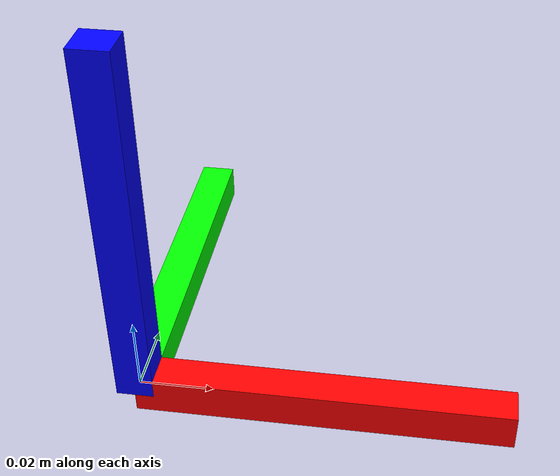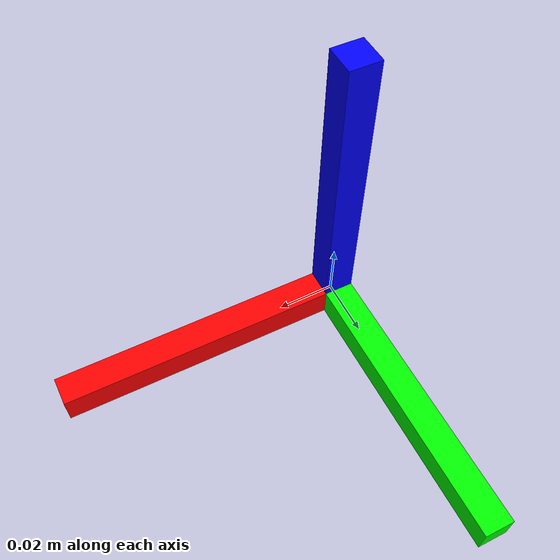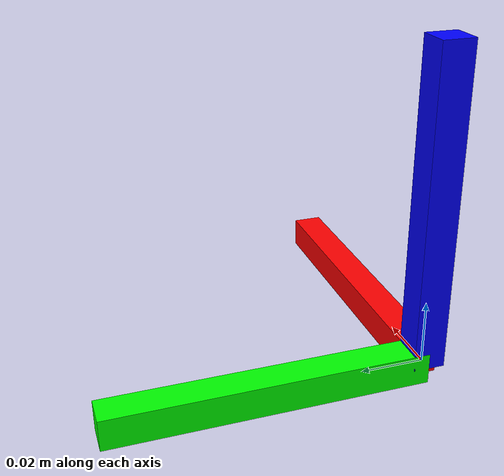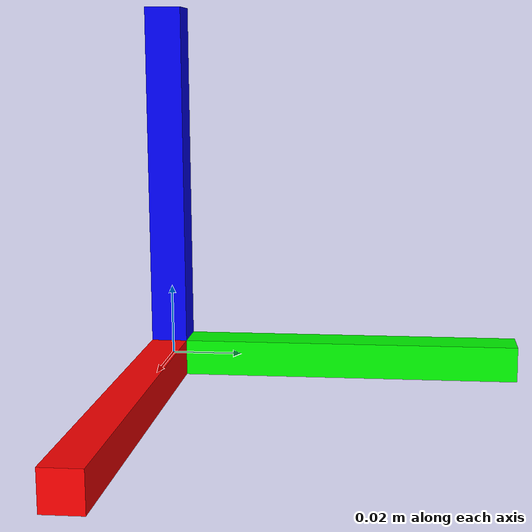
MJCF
<?xml version="1.0"?>
<mujoco model="axis_marker">
    <asset>
        <material name="red" rgba="1.0 0.0 0.0 1.0" />
        <material name="green" rgba="0.0 1.0 0.0 1.0" />
        <material name="blue" rgba="0.0 0.0 1.0 1.0" />
    </asset>

    <worldbody>
        <body name="base_link">
            <!-- X axis - Red -->
            <geom name="x_axis" type="box" size="0.05 0.005 0.005" pos="0.05 0 0"
                material="red" contype="0" conaffinity="0" group="0" />

            <!-- Y axis - Green -->
            <geom name="y_axis" type="box" size="0.005 0.05 0.005" pos="0 0.05 0"
                material="green" contype="0" conaffinity="0" group="0" />

            <!-- Z axis - Blue -->
            <geom name="z_axis" type="box" size="0.005 0.005 0.05" pos="0 0 0.05"
                material="blue" contype="0" conaffinity="0" group="0" />

            <inertial pos="0 0 0" mass="0.001" diaginertia="0.000001 0.000001 0.000001" />
        </body>
    </worldbody>
</mujoco>
